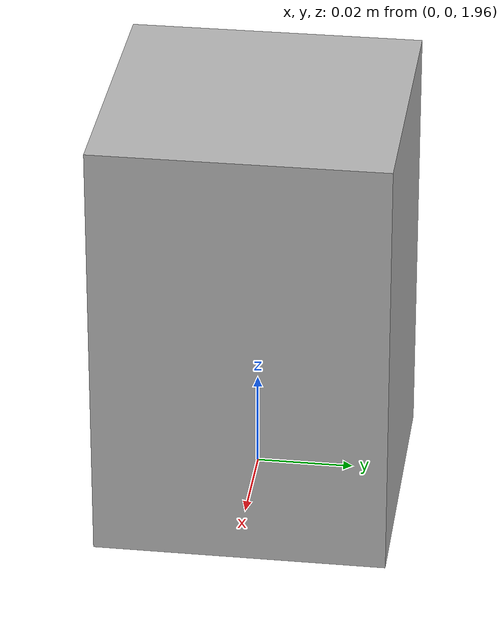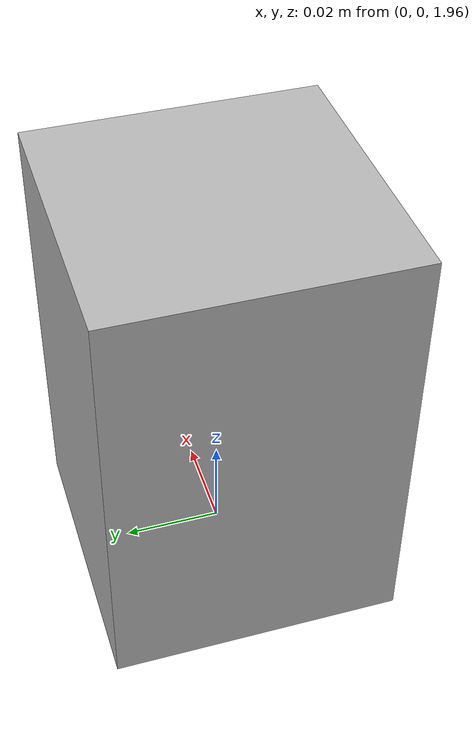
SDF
<?xml version="1.0" ?>
<sdf version="1.9">
  <world name="teste_inclinado">
    <physics name="1ms" type="ignored">
      <max_step_size>0.001</max_step_size>
      <real_time_factor>1.0</real_time_factor>
    </physics>
    <plugin filename="gz-sim-physics-system" name="gz::sim::systems::Physics"/>
    <plugin filename="gz-sim-scene-broadcaster-system" name="gz::sim::systems::SceneBroadcaster"/>
    <plugin filename="gz-sim-sensors-system" name="gz::sim::systems::Sensors">
      <render_engine>ogre2</render_engine>
    </plugin>

    <light type="directional" name="sun">
      <pose>0 0 10 0 0 0</pose>
      <direction>-0.5 0.1 -0.9</direction>
    </light>

    <model name="ground_plane">
      <pose>0 0 0 0 0.17453292519943295 0</pose>
      <static>true</static>
      <link name="link">
        <collision name="collision">
          <geometry><plane><normal>0 0 1</normal></plane></geometry>
        </collision>
        <visual name="visual">
          <geometry><plane><normal>0 0 1</normal><size>50 50</size></plane></geometry>
        </visual>
      </link>
    </model>

    <model name="livox_avia_test">
      <pose>0 0 2 0 1.5707 0</pose>
      <static>true</static>
      <link name="link">
        <visual name="visual">
          <geometry><box><size>0.09 0.06 0.06</size></box></geometry>
        </visual>
        <sensor name="gpu_ray" type="gpu_lidar">
          <pose>0 0 0 0 0 0</pose>
          <topic>lidar</topic>
          <update_rate>10</update_rate>
          <always_on>true</always_on>
          <visualize>false</visualize>
          <lidar>
            <scan>
              <horizontal><samples>360</samples><resolution>1</resolution><min_angle>-0.61436</min_angle><max_angle>0.61436</max_angle></horizontal>
              <vertical><samples>200</samples><resolution>1</resolution><min_angle>-0.6737</min_angle><max_angle>0.6737</max_angle></vertical>
            </scan>
            <range><min>0.1</min><max>450.0</max><resolution>0.01</resolution></range>
            <noise><type>gaussian</type><mean>0.0</mean><stddev>0.02</stddev></noise>
          </lidar>
        </sensor>
      </link>
    </model>
  </world>
</sdf>
